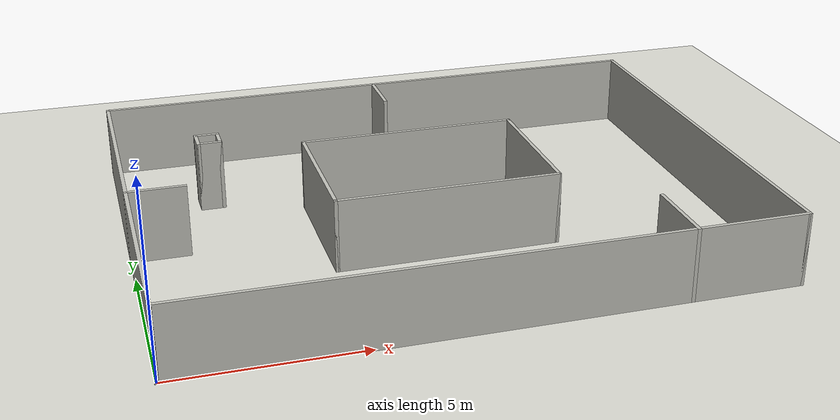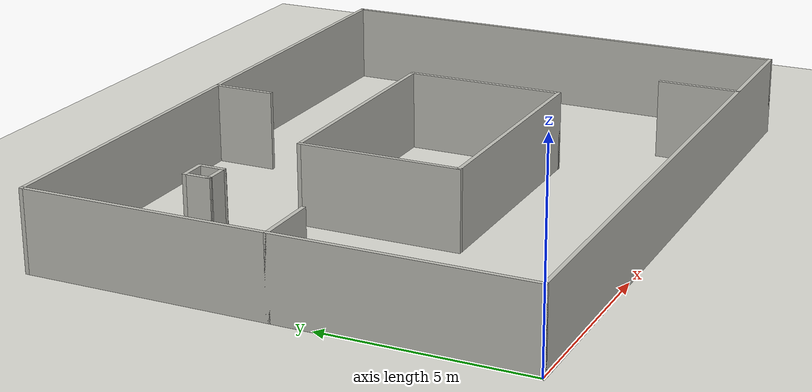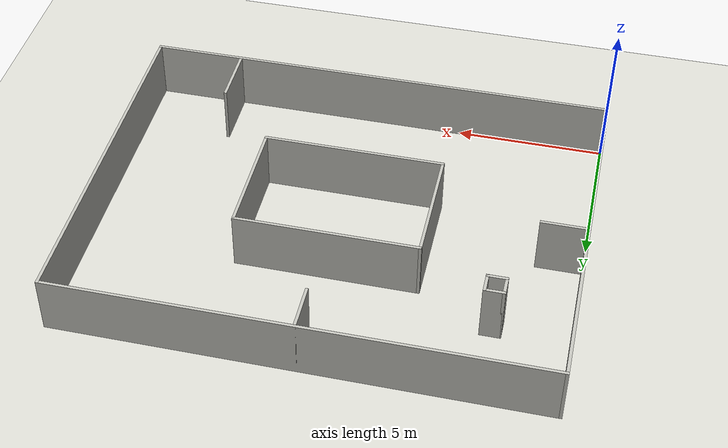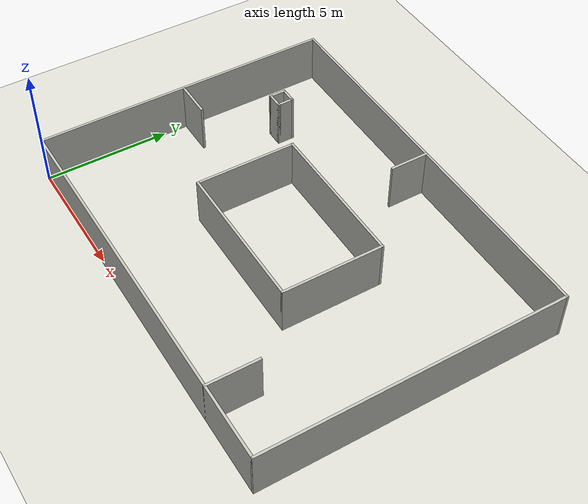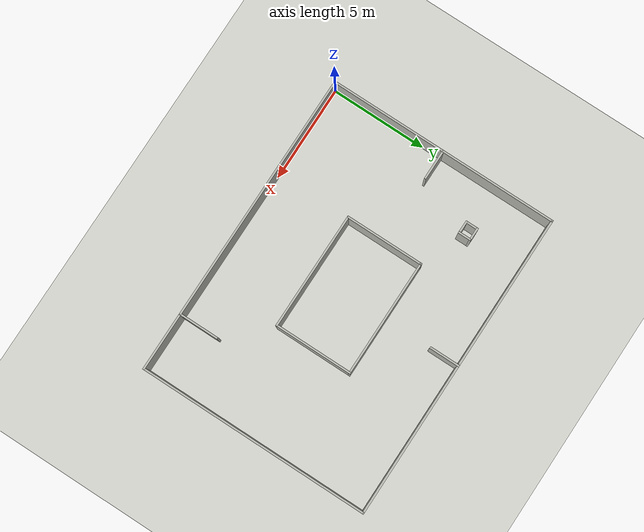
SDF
<?xml version="1.0"?>
<!-- GENERATED by cc_gazebo/scripts/generate_worlds.py from sim/ccsim/world.py (seed 1000). Do not edit. -->
<sdf version="1.9">
  <world name="kidnapped">
    <physics name="1ms" type="ignore">
      <max_step_size>0.001</max_step_size>
      <real_time_factor>1.0</real_time_factor>
    </physics>
    <plugin filename="gz-sim-physics-system" name="gz::sim::systems::Physics"/>
    <plugin filename="gz-sim-user-commands-system" name="gz::sim::systems::UserCommands"/>
    <plugin filename="gz-sim-scene-broadcaster-system" name="gz::sim::systems::SceneBroadcaster"/>
    <plugin filename="gz-sim-sensors-system" name="gz::sim::systems::Sensors">
      <render_engine>ogre2</render_engine>
    </plugin>
    <plugin filename="gz-sim-imu-system" name="gz::sim::systems::Imu"/>
    <plugin filename="gz-sim-contact-system" name="gz::sim::systems::Contact"/>
    <scene><ambient>0.6 0.6 0.6 1</ambient><background>0.8 0.85 0.9 1</background><shadows>false</shadows></scene>
    <gui fullscreen="0">
      <plugin filename="MinimalScene" name="3D View">
        <gz-gui><title>3D View</title><property type="bool" key="showTitleBar">false</property>
          <property type="string" key="state">docked</property></gz-gui>
        <engine>ogre2</engine>
        <scene>scene</scene>
        <ambient_light>0.4 0.4 0.4</ambient_light>
        <background_color>0.8 0.85 0.9</background_color>
        <camera_pose>-1.50 2.00 3.0 0 0.6 0.000</camera_pose>
        <camera_clip><near>0.1</near><far>500</far></camera_clip>
      </plugin>
      <plugin filename="GzSceneManager" name="Scene Manager"><gz-gui><property key="resizable" type="bool">false</property><property key="width" type="double">5</property><property key="height" type="double">5</property><property key="state" type="string">floating</property><property key="showTitleBar" type="bool">false</property></gz-gui></plugin>
      <plugin filename="InteractiveViewControl" name="Interactive view control"><gz-gui><property key="resizable" type="bool">false</property><property key="width" type="double">5</property><property key="height" type="double">5</property><property key="state" type="string">floating</property><property key="showTitleBar" type="bool">false</property></gz-gui></plugin>
      <plugin filename="CameraTracking" name="Camera Tracking"><gz-gui><property key="resizable" type="bool">false</property><property key="width" type="double">5</property><property key="height" type="double">5</property><property key="state" type="string">floating</property><property key="showTitleBar" type="bool">false</property></gz-gui></plugin>
      <plugin filename="MarkerManager" name="Marker manager"><gz-gui><property key="resizable" type="bool">false</property><property key="width" type="double">5</property><property key="height" type="double">5</property><property key="state" type="string">floating</property><property key="showTitleBar" type="bool">false</property></gz-gui></plugin>
      <plugin filename="SelectEntities" name="Select Entities"><gz-gui><property key="resizable" type="bool">false</property><property key="width" type="double">5</property><property key="height" type="double">5</property><property key="state" type="string">floating</property><property key="showTitleBar" type="bool">false</property></gz-gui></plugin>
      <plugin filename="Spawn" name="Spawn Entities"><gz-gui><property key="resizable" type="bool">false</property><property key="width" type="double">5</property><property key="height" type="double">5</property><property key="state" type="string">floating</property><property key="showTitleBar" type="bool">false</property></gz-gui></plugin>
      <plugin filename="VisualizationCapabilities" name="Visualization Capabilities"><gz-gui><property key="resizable" type="bool">false</property><property key="width" type="double">5</property><property key="height" type="double">5</property><property key="state" type="string">floating</property><property key="showTitleBar" type="bool">false</property></gz-gui></plugin>
      <plugin filename="WorldControl" name="World control">
        <gz-gui><title>World control</title><property type="bool" key="showTitleBar">false</property>
          <property type="bool" key="resizable">false</property><property type="double" key="height">72</property>
          <property type="double" key="z">1</property><property type="string" key="state">floating</property>
          <anchors target="3D View"><line own="left" target="left"/><line own="bottom" target="bottom"/></anchors></gz-gui>
        <play_pause>true</play_pause><step>true</step><start_paused>false</start_paused><use_event>true</use_event>
      </plugin>
      <plugin filename="WorldStats" name="World stats">
        <gz-gui><title>World stats</title><property type="bool" key="showTitleBar">false</property>
          <property type="bool" key="resizable">false</property><property type="double" key="height">110</property>
          <property type="double" key="width">290</property><property type="double" key="z">1</property>
          <property type="string" key="state">floating</property>
          <anchors target="3D View"><line own="right" target="right"/><line own="bottom" target="bottom"/></anchors></gz-gui>
        <sim_time>true</sim_time><real_time>true</real_time><real_time_factor>true</real_time_factor><iterations>true</iterations>
      </plugin>
      <plugin filename="EntityTree" name="Entity tree"></plugin>
      <plugin filename="ComponentInspector" name="Component inspector"></plugin>
    </gui>
    <light type="directional" name="sun">
      <cast_shadows>false</cast_shadows>
      <pose>0 0 10 0 0 0</pose>
      <diffuse>0.9 0.9 0.9 1</diffuse>
      <direction>-0.4 0.2 -0.9</direction>
    </light>
    <model name="ground_plane">
      <static>true</static>
      <link name="link">
        <collision name="collision">
          <geometry><plane><normal>0 0 1</normal><size>200 200</size></plane></geometry>
          <!-- polished floor -->
          <surface><friction><ode><mu>0.6</mu><mu2>0.6</mu2></ode></friction></surface>
        </collision>
        <visual name="visual">
          <geometry><plane><normal>0 0 1</normal><size>200 200</size></plane></geometry>
          <material><ambient>0.85 0.85 0.82 1</ambient><diffuse>0.85 0.85 0.82 1</diffuse></material>
        </visual>
      </link>
    </model>
    <model name="wall_0">
      <static>true</static>
      <pose>8.0000 0.0000 1.0000 0 0 0.0000</pose>
      <link name="link">
        <collision name="collision"><geometry><box><size>16.1000 0.1000 2.0000</size></box></geometry></collision>
        <visual name="visual">
          <geometry><box><size>16.1000 0.1000 2.0000</size></box></geometry>
          <material><ambient>0.75 0.75 0.72 1</ambient><diffuse>0.75 0.75 0.72 1</diffuse></material>
        </visual>
      </link>
    </model>
    <model name="wall_1">
      <static>true</static>
      <pose>16.0000 6.0000 1.0000 0 0 1.5708</pose>
      <link name="link">
        <collision name="collision"><geometry><box><size>12.1000 0.1000 2.0000</size></box></geometry></collision>
        <visual name="visual">
          <geometry><box><size>12.1000 0.1000 2.0000</size></box></geometry>
          <material><ambient>0.75 0.75 0.72 1</ambient><diffuse>0.75 0.75 0.72 1</diffuse></material>
        </visual>
      </link>
    </model>
    <model name="wall_2">
      <static>true</static>
      <pose>8.0000 12.0000 1.0000 0 0 3.1416</pose>
      <link name="link">
        <collision name="collision"><geometry><box><size>16.1000 0.1000 2.0000</size></box></geometry></collision>
        <visual name="visual">
          <geometry><box><size>16.1000 0.1000 2.0000</size></box></geometry>
          <material><ambient>0.75 0.75 0.72 1</ambient><diffuse>0.75 0.75 0.72 1</diffuse></material>
        </visual>
      </link>
    </model>
    <model name="wall_3">
      <static>true</static>
      <pose>0.0000 6.0000 1.0000 0 0 -1.5708</pose>
      <link name="link">
        <collision name="collision"><geometry><box><size>12.1000 0.1000 2.0000</size></box></geometry></collision>
        <visual name="visual">
          <geometry><box><size>12.1000 0.1000 2.0000</size></box></geometry>
          <material><ambient>0.75 0.75 0.72 1</ambient><diffuse>0.75 0.75 0.72 1</diffuse></material>
        </visual>
      </link>
    </model>
    <model name="wall_4">
      <static>true</static>
      <pose>8.0000 4.0000 1.0000 0 0 0.0000</pose>
      <link name="link">
        <collision name="collision"><geometry><box><size>6.1000 0.1000 2.0000</size></box></geometry></collision>
        <visual name="visual">
          <geometry><box><size>6.1000 0.1000 2.0000</size></box></geometry>
          <material><ambient>0.75 0.75 0.72 1</ambient><diffuse>0.75 0.75 0.72 1</diffuse></material>
        </visual>
      </link>
    </model>
    <model name="wall_5">
      <static>true</static>
      <pose>11.0000 6.0000 1.0000 0 0 1.5708</pose>
      <link name="link">
        <collision name="collision"><geometry><box><size>4.1000 0.1000 2.0000</size></box></geometry></collision>
        <visual name="visual">
          <geometry><box><size>4.1000 0.1000 2.0000</size></box></geometry>
          <material><ambient>0.75 0.75 0.72 1</ambient><diffuse>0.75 0.75 0.72 1</diffuse></material>
        </visual>
      </link>
    </model>
    <model name="wall_6">
      <static>true</static>
      <pose>8.0000 8.0000 1.0000 0 0 3.1416</pose>
      <link name="link">
        <collision name="collision"><geometry><box><size>6.1000 0.1000 2.0000</size></box></geometry></collision>
        <visual name="visual">
          <geometry><box><size>6.1000 0.1000 2.0000</size></box></geometry>
          <material><ambient>0.75 0.75 0.72 1</ambient><diffuse>0.75 0.75 0.72 1</diffuse></material>
        </visual>
      </link>
    </model>
    <model name="wall_7">
      <static>true</static>
      <pose>5.0000 6.0000 1.0000 0 0 -1.5708</pose>
      <link name="link">
        <collision name="collision"><geometry><box><size>4.1000 0.1000 2.0000</size></box></geometry></collision>
        <visual name="visual">
          <geometry><box><size>4.1000 0.1000 2.0000</size></box></geometry>
          <material><ambient>0.75 0.75 0.72 1</ambient><diffuse>0.75 0.75 0.72 1</diffuse></material>
        </visual>
      </link>
    </model>
    <model name="wall_8">
      <static>true</static>
      <pose>2.5000 8.7000 1.0000 0 0 0.0000</pose>
      <link name="link">
        <collision name="collision"><geometry><box><size>0.7000 0.1000 2.0000</size></box></geometry></collision>
        <visual name="visual">
          <geometry><box><size>0.7000 0.1000 2.0000</size></box></geometry>
          <material><ambient>0.75 0.75 0.72 1</ambient><diffuse>0.75 0.75 0.72 1</diffuse></material>
        </visual>
      </link>
    </model>
    <model name="wall_9">
      <static>true</static>
      <pose>2.8000 9.0000 1.0000 0 0 1.5708</pose>
      <link name="link">
        <collision name="collision"><geometry><box><size>0.7000 0.1000 2.0000</size></box></geometry></collision>
        <visual name="visual">
          <geometry><box><size>0.7000 0.1000 2.0000</size></box></geometry>
          <material><ambient>0.75 0.75 0.72 1</ambient><diffuse>0.75 0.75 0.72 1</diffuse></material>
        </visual>
      </link>
    </model>
    <model name="wall_10">
      <static>true</static>
      <pose>2.5000 9.3000 1.0000 0 0 3.1416</pose>
      <link name="link">
        <collision name="collision"><geometry><box><size>0.7000 0.1000 2.0000</size></box></geometry></collision>
        <visual name="visual">
          <geometry><box><size>0.7000 0.1000 2.0000</size></box></geometry>
          <material><ambient>0.75 0.75 0.72 1</ambient><diffuse>0.75 0.75 0.72 1</diffuse></material>
        </visual>
      </link>
    </model>
    <model name="wall_11">
      <static>true</static>
      <pose>2.2000 9.0000 1.0000 0 0 -1.5708</pose>
      <link name="link">
        <collision name="collision"><geometry><box><size>0.7000 0.1000 2.0000</size></box></geometry></collision>
        <visual name="visual">
          <geometry><box><size>0.7000 0.1000 2.0000</size></box></geometry>
          <material><ambient>0.75 0.75 0.72 1</ambient><diffuse>0.75 0.75 0.72 1</diffuse></material>
        </visual>
      </link>
    </model>
    <model name="wall_12">
      <static>true</static>
      <pose>13.0000 1.0000 1.0000 0 0 1.5708</pose>
      <link name="link">
        <collision name="collision"><geometry><box><size>2.1000 0.1000 2.0000</size></box></geometry></collision>
        <visual name="visual">
          <geometry><box><size>2.1000 0.1000 2.0000</size></box></geometry>
          <material><ambient>0.75 0.75 0.72 1</ambient><diffuse>0.75 0.75 0.72 1</diffuse></material>
        </visual>
      </link>
    </model>
    <model name="wall_13">
      <static>true</static>
      <pose>8.0000 11.2500 1.0000 0 0 -1.5708</pose>
      <link name="link">
        <collision name="collision"><geometry><box><size>1.6000 0.1000 2.0000</size></box></geometry></collision>
        <visual name="visual">
          <geometry><box><size>1.6000 0.1000 2.0000</size></box></geometry>
          <material><ambient>0.75 0.75 0.72 1</ambient><diffuse>0.75 0.75 0.72 1</diffuse></material>
        </visual>
      </link>
    </model>
    <model name="wall_14">
      <static>true</static>
      <pose>0.7500 6.0000 1.0000 0 0 0.0000</pose>
      <link name="link">
        <collision name="collision"><geometry><box><size>1.6000 0.1000 2.0000</size></box></geometry></collision>
        <visual name="visual">
          <geometry><box><size>1.6000 0.1000 2.0000</size></box></geometry>
          <material><ambient>0.75 0.75 0.72 1</ambient><diffuse>0.75 0.75 0.72 1</diffuse></material>
        </visual>
      </link>
    </model>
  </world>
</sdf>
